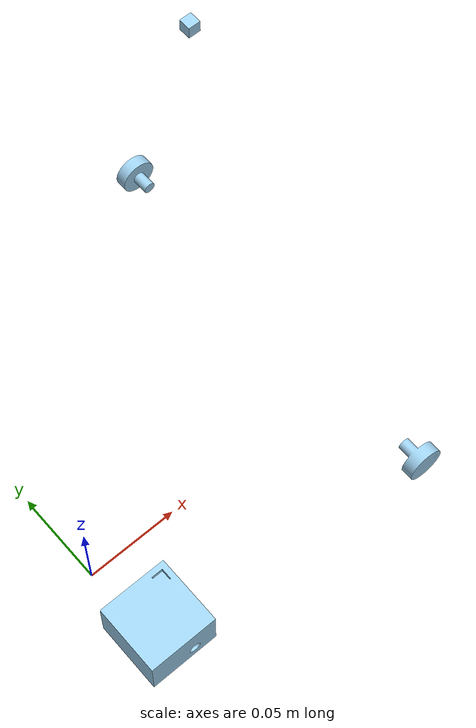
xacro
<robot name="onshape" xmlns:xacro="http://www.ros.org/wiki/xacro">
    <xacro:include filename="gazebo_control.xacro" />
    <!-- ros2 control stuff -->

    <!-- gazebo stuff -->

    <!-- from onshape -->
    <link name="base_link"></link>
    <joint name="base_link_to_base" type="fixed">
        <parent link="base_link" />
        <child link="base" />
        <origin rpy="0.0 0 0" xyz="0 0 0" />
    </joint>
    <link name="base">
        <visual>
            <origin xyz="-0.010066849791781361939 -0.058318893075270938908 -0.012793734000476300605"
                rpy="0 -0 0" />
            <geometry>
                <mesh filename="file://$(find test_robot)/meshes/base.stl" />
            </geometry>
            <material name="base_material">
                <color
                    rgba="0.61568627450980395466 0.81176470588235294379 0.92941176470588238168 1.0" />
            </material>
        </visual>
        <collision>
            <origin xyz="-0.010066849791781361939 -0.058318893075270938908 -0.012793734000476300605"
                rpy="0 -0 0" />
            <geometry>
                <mesh filename="file://$(find test_robot)/meshes/base.stl" />
            </geometry>
        </collision>
        <visual>
            <origin xyz="0.15993315020821863293 0.11168110692472901779 0.17720626599952371549"
                rpy="0 -0 3.1415926535897913396" />
            <geometry>
                <mesh filename="file://$(find test_robot)/meshes/imu.stl" />
            </geometry>
            <material name="imu_material">
                <color
                    rgba="0.61568627450980395466 0.81176470588235294379 0.92941176470588238168 1.0" />
            </material>
        </visual>
        <collision>
            <origin xyz="0.15993315020821863293 0.11168110692472901779 0.17720626599952371549"
                rpy="0 -0 3.1415926535897913396" />
            <geometry>
                <mesh filename="file://$(find test_robot)/meshes/imu.stl" />
            </geometry>
        </collision>
        <inertial>
            <origin xyz="0.090727912630680265793 0.042498723769375031101 0.08876809881989008999"
                rpy="0 0 0" />
            <mass value="6.246631149239903813" />
            <inertia ixx="0.042221042207173931082" ixy="-0.00028896824858569598871"
                ixz="-0.00055422947547003318693" iyy="0.042253466058457457566"
                iyz="-0.00054544071457295431084" izz="0.041604660645204828706" />
        </inertial>
    </link>

    <link name="wheels">
        <visual>
            <origin
                xyz="6.9388939039072283776e-18 -2.7755575615628913511e-17 0.0044450000000000045031"
                rpy="1.570796326794896558 -0 3.2025880195782256339e-17" />
            <geometry>
                <mesh filename="file://$(find test_robot)/meshes/wheels.stl" />
            </geometry>
            <material name="wheels_material">
                <color
                    rgba="0.61568627450980395466 0.81176470588235294379 0.92941176470588238168 1.0" />
            </material>
        </visual>
        <collision>
            <origin
                xyz="6.9388939039072283776e-18 -2.7755575615628913511e-17 0.0044450000000000045031"
                rpy="1.570796326794896558 -0 3.2025880195782256339e-17" />
            <geometry>
                <mesh filename="file://$(find test_robot)/meshes/wheels.stl" />
            </geometry>
        </collision>
        <inertial>
            <origin
                xyz="5.6960313902291965294e-18 -2.9854147664030830535e-17 -0.014077259076037539065"
                rpy="0 0 0" />
            <mass value="0.1154098713063179682" />
            <inertia ixx="5.2283748678023338598e-05" ixy="2.9450165228832919557e-21" ixz="0"
                iyy="5.2283748678023311493e-05" iyz="0" izz="9.5835774846088312784e-05" />
        </inertial>
    </link>

    <joint name="right_wheel_joint" type="continuous">
        <origin xyz="0.1499331502082186518 -0.058318893075270938908 0.027206265999523703697"
            rpy="-1.570796326794896558 1.2027147718070467786 0" />
        <parent link="base" />
        <child link="wheels" />
        <axis xyz="0 0 1" />
        <limit effort="1" velocity="20" />
        <joint_properties friction="0.5" />
    </joint>

    <link name="wheels_2">
        <visual>
            <origin xyz="0 0 0.0044450000000000045031"
                rpy="1.570796326794896558 -0 -1.5904821510200680061e-17" />
            <geometry>
                <mesh filename="file://$(find test_robot)/meshes/wheels.stl" />
            </geometry>
            <material name="wheels_material">
                <color
                    rgba="0.61568627450980395466 0.81176470588235294379 0.92941176470588238168 1.0" />
            </material>
        </visual>
        <collision>
            <origin xyz="0 0 0.0044450000000000045031"
                rpy="1.570796326794896558 -0 -1.5904821510200680061e-17" />
            <geometry>
                <mesh filename="file://$(find test_robot)/meshes/wheels.stl" />
            </geometry>
        </collision>
        <inertial>
            <origin
                xyz="-1.2428625136780312705e-18 -2.0985720484019147135e-18 -0.014077259076037539065"
                rpy="0 0 0" />
            <mass value="0.1154098713063179682" />
            <inertia ixx="5.228374867802329794e-05" ixy="-1.3228532352958609618e-21" ixz="0"
                iyy="5.2283748678023325045e-05" iyz="0" izz="9.5835774846088312784e-05" />
        </inertial>
    </link>

    <joint name="left_wheel_joint" type="continuous">
        <origin xyz="0.14993315020821862404 0.14168110692472901668 0.027206265999523707166"
            rpy="-1.570796326794896558 -0.40810286715460225571 3.141592653589793116" />
        <parent link="base" />
        <child link="wheels_2" />
        <axis xyz="0 0 1" />
        <limit effort="1" velocity="20" />
        <joint_properties friction="0.5" />
    </joint>

</robot>
